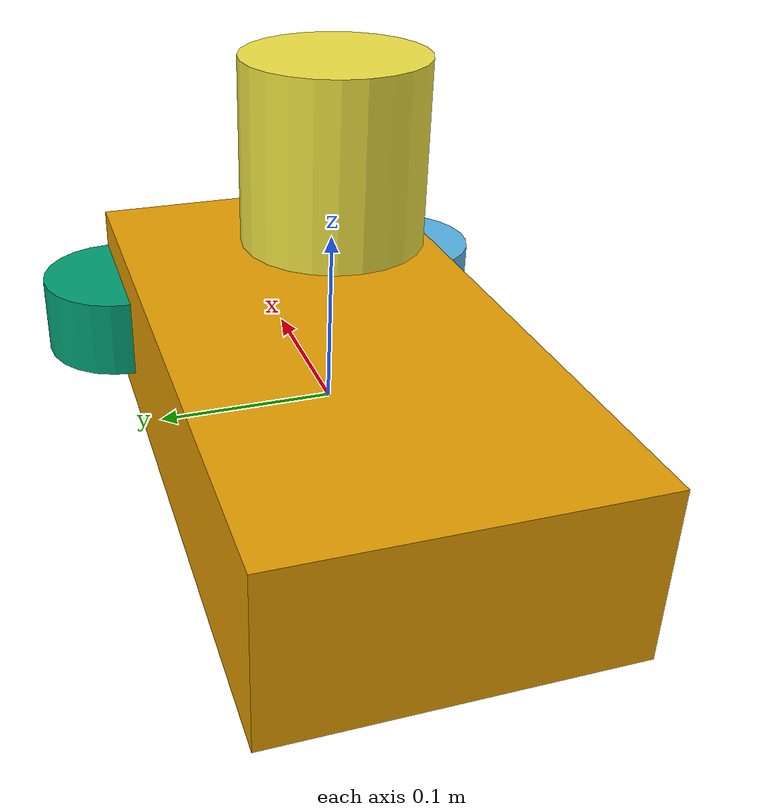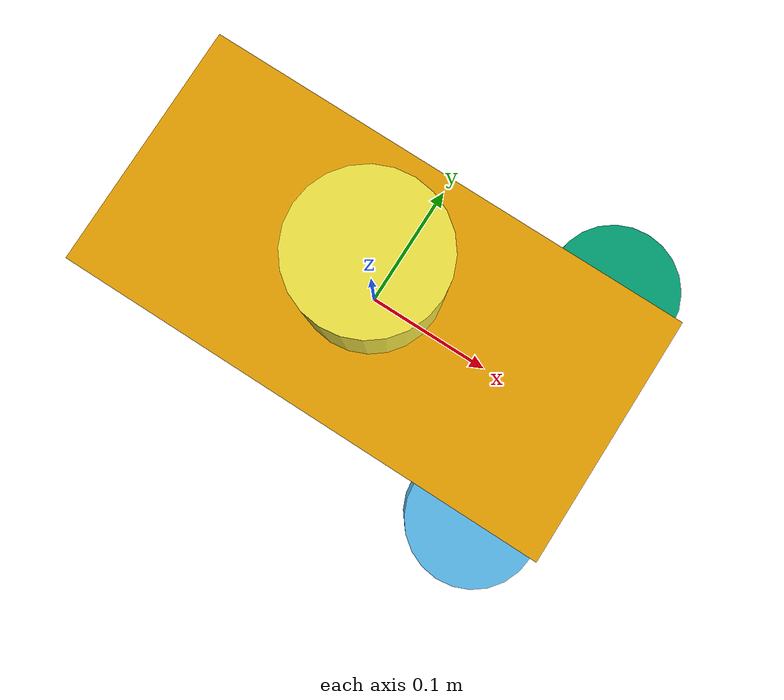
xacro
<?xml version="1.0"?>
<robot name="diff_drive_robot">

  <!-- Base Link -->
  <link name="base_link">
    <visual>
      <geometry>
        <box size="0.4 0.2 0.1"/>
      </geometry>
    </visual>
    <collision>
      <geometry>
        <box size="0.4 0.2 0.1"/>
      </geometry>
    </collision>
  </link>

  <!-- Wheel Links -->
  <link name="left_wheel">
    <visual>
      <geometry>
        <cylinder length="0.05" radius="0.05"/>
      </geometry>
    </visual>
    <collision>
      <geometry>
        <cylinder length="0.05" radius="0.05"/>
      </geometry>
    </collision>
  </link>

  <link name="right_wheel">
    <visual>
      <geometry>
        <cylinder length="0.05" radius="0.05"/>
      </geometry>
    </visual>
    <collision>
      <geometry>
        <cylinder length="0.05" radius="0.05"/>
      </geometry>
    </collision>
  </link>

  <!-- LiDAR Link -->
  <link name="lidar_link">
    <visual>
      <geometry>
        <cylinder length="0.1" radius="0.05"/>
      </geometry>
    </visual>
    <collision>
      <geometry>
        <cylinder length="0.1" radius="0.05"/>
      </geometry>
    </collision>
  </link>

  <!-- Joint connecting base_link and left_wheel -->
  <joint name="left_wheel_joint" type="continuous">
    <parent link="base_link"/>
    <child link="left_wheel"/>
    <origin xyz="0.15 -0.1 0" rpy="0 0 0"/>
    <axis xyz="0 1 0"/>
  </joint>

  <!-- Joint connecting base_link and right_wheel -->
  <joint name="right_wheel_joint" type="continuous">
    <parent link="base_link"/>
    <child link="right_wheel"/>
    <origin xyz="0.15 0.1 0" rpy="0 0 0"/>
    <axis xyz="0 1 0"/>
  </joint>

  <!-- Joint connecting base_link and lidar_link -->
  <joint name="lidar_joint" type="fixed">
    <parent link="base_link"/>
    <child link="lidar_link"/>
    <origin xyz="0 0 0.15" rpy="0 0 0"/>
  </joint>

</robot>
